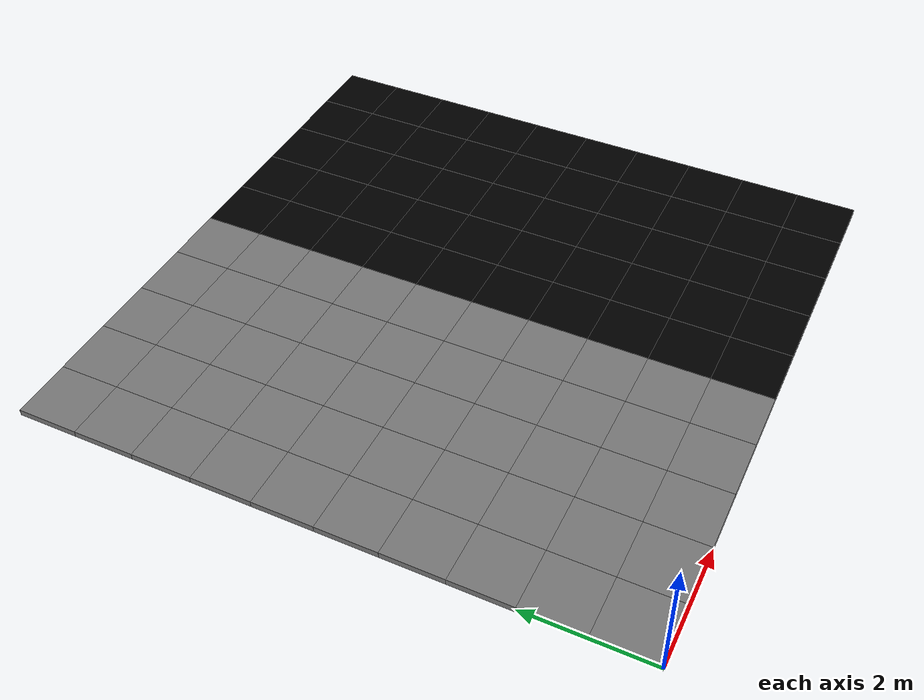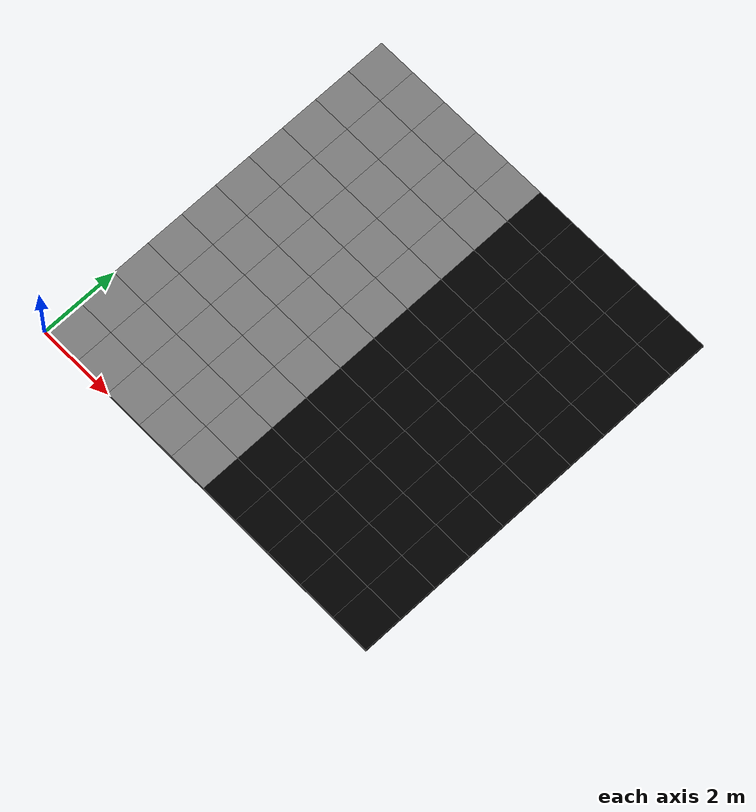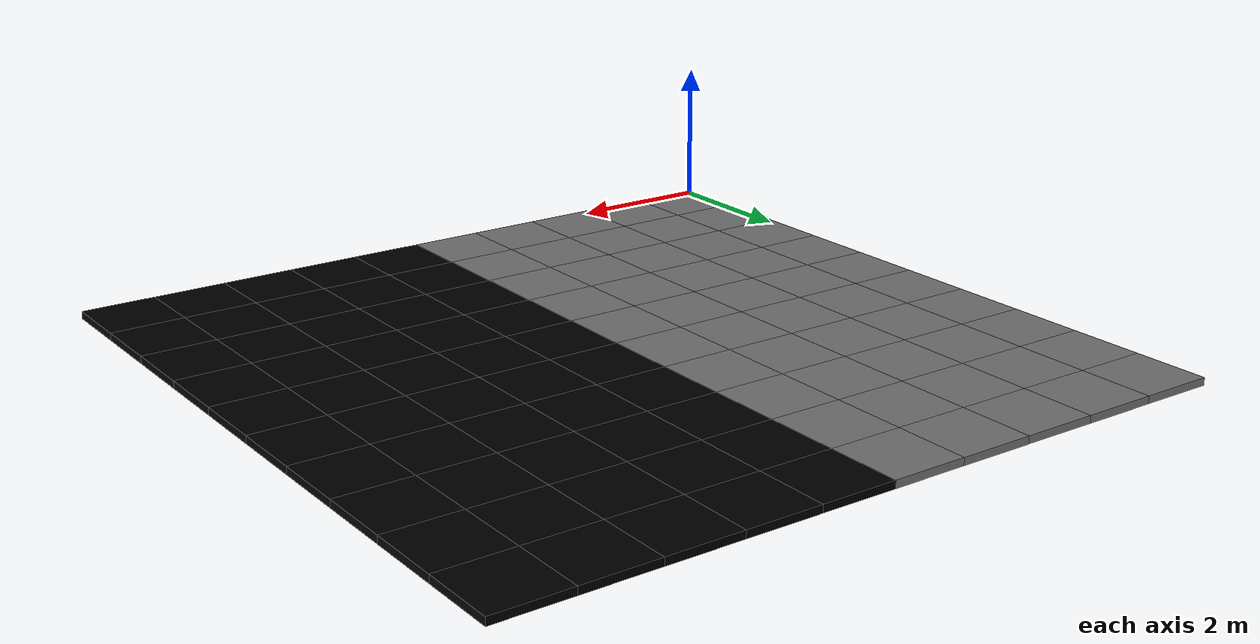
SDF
<sdf version="1.8">
 <world name="binary_discrimination_world">
  <model name="tile_0.5_0.5">
   <static>true</static>
   <pose>0.5 0.5 0 0 0 0</pose>
   <link name="link">
    <collision name="collision"><geometry><box><size>1 1 0.1</size></box></geometry></collision>
    <visual name="visual">
     <geometry><box><size>1 1 0.1</size></box></geometry>
     <material><ambient>0.5 0.5 0.5 1</ambient><diffuse>0.5 0.5 0.5 1</diffuse></material>
    </visual>
   </link>
  </model>
  <model name="tile_0.5_1.5">
   <static>true</static>
   <pose>0.5 1.5 0 0 0 0</pose>
   <link name="link">
    <collision name="collision"><geometry><box><size>1 1 0.1</size></box></geometry></collision>
    <visual name="visual">
     <geometry><box><size>1 1 0.1</size></box></geometry>
     <material><ambient>0.5 0.5 0.5 1</ambient><diffuse>0.5 0.5 0.5 1</diffuse></material>
    </visual>
   </link>
  </model>
  <model name="tile_0.5_2.5">
   <static>true</static>
   <pose>0.5 2.5 0 0 0 0</pose>
   <link name="link">
    <collision name="collision"><geometry><box><size>1 1 0.1</size></box></geometry></collision>
    <visual name="visual">
     <geometry><box><size>1 1 0.1</size></box></geometry>
     <material><ambient>0.5 0.5 0.5 1</ambient><diffuse>0.5 0.5 0.5 1</diffuse></material>
    </visual>
   </link>
  </model>
  <model name="tile_0.5_3.5">
   <static>true</static>
   <pose>0.5 3.5 0 0 0 0</pose>
   <link name="link">
    <collision name="collision"><geometry><box><size>1 1 0.1</size></box></geometry></collision>
    <visual name="visual">
     <geometry><box><size>1 1 0.1</size></box></geometry>
     <material><ambient>0.5 0.5 0.5 1</ambient><diffuse>0.5 0.5 0.5 1</diffuse></material>
    </visual>
   </link>
  </model>
  <model name="tile_0.5_4.5">
   <static>true</static>
   <pose>0.5 4.5 0 0 0 0</pose>
   <link name="link">
    <collision name="collision"><geometry><box><size>1 1 0.1</size></box></geometry></collision>
    <visual name="visual">
     <geometry><box><size>1 1 0.1</size></box></geometry>
     <material><ambient>0.5 0.5 0.5 1</ambient><diffuse>0.5 0.5 0.5 1</diffuse></material>
    </visual>
   </link>
  </model>
  <model name="tile_0.5_5.5">
   <static>true</static>
   <pose>0.5 5.5 0 0 0 0</pose>
   <link name="link">
    <collision name="collision"><geometry><box><size>1 1 0.1</size></box></geometry></collision>
    <visual name="visual">
     <geometry><box><size>1 1 0.1</size></box></geometry>
     <material><ambient>0.5 0.5 0.5 1</ambient><diffuse>0.5 0.5 0.5 1</diffuse></material>
    </visual>
   </link>
  </model>
  <model name="tile_0.5_6.5">
   <static>true</static>
   <pose>0.5 6.5 0 0 0 0</pose>
   <link name="link">
    <collision name="collision"><geometry><box><size>1 1 0.1</size></box></geometry></collision>
    <visual name="visual">
     <geometry><box><size>1 1 0.1</size></box></geometry>
     <material><ambient>0.5 0.5 0.5 1</ambient><diffuse>0.5 0.5 0.5 1</diffuse></material>
    </visual>
   </link>
  </model>
  <model name="tile_0.5_7.5">
   <static>true</static>
   <pose>0.5 7.5 0 0 0 0</pose>
   <link name="link">
    <collision name="collision"><geometry><box><size>1 1 0.1</size></box></geometry></collision>
    <visual name="visual">
     <geometry><box><size>1 1 0.1</size></box></geometry>
     <material><ambient>0.5 0.5 0.5 1</ambient><diffuse>0.5 0.5 0.5 1</diffuse></material>
    </visual>
   </link>
  </model>
  <model name="tile_0.5_8.5">
   <static>true</static>
   <pose>0.5 8.5 0 0 0 0</pose>
   <link name="link">
    <collision name="collision"><geometry><box><size>1 1 0.1</size></box></geometry></collision>
    <visual name="visual">
     <geometry><box><size>1 1 0.1</size></box></geometry>
     <material><ambient>0.5 0.5 0.5 1</ambient><diffuse>0.5 0.5 0.5 1</diffuse></material>
    </visual>
   </link>
  </model>
  <model name="tile_0.5_9.5">
   <static>true</static>
   <pose>0.5 9.5 0 0 0 0</pose>
   <link name="link">
    <collision name="collision"><geometry><box><size>1 1 0.1</size></box></geometry></collision>
    <visual name="visual">
     <geometry><box><size>1 1 0.1</size></box></geometry>
     <material><ambient>0.5 0.5 0.5 1</ambient><diffuse>0.5 0.5 0.5 1</diffuse></material>
    </visual>
   </link>
  </model>
  <model name="tile_1.5_0.5">
   <static>true</static>
   <pose>1.5 0.5 0 0 0 0</pose>
   <link name="link">
    <collision name="collision"><geometry><box><size>1 1 0.1</size></box></geometry></collision>
    <visual name="visual">
     <geometry><box><size>1 1 0.1</size></box></geometry>
     <material><ambient>0.5 0.5 0.5 1</ambient><diffuse>0.5 0.5 0.5 1</diffuse></material>
    </visual>
   </link>
  </model>
  <model name="tile_1.5_1.5">
   <static>true</static>
   <pose>1.5 1.5 0 0 0 0</pose>
   <link name="link">
    <collision name="collision"><geometry><box><size>1 1 0.1</size></box></geometry></collision>
    <visual name="visual">
     <geometry><box><size>1 1 0.1</size></box></geometry>
     <material><ambient>0.5 0.5 0.5 1</ambient><diffuse>0.5 0.5 0.5 1</diffuse></material>
    </visual>
   </link>
  </model>
  <model name="tile_1.5_2.5">
   <static>true</static>
   <pose>1.5 2.5 0 0 0 0</pose>
   <link name="link">
    <collision name="collision"><geometry><box><size>1 1 0.1</size></box></geometry></collision>
    <visual name="visual">
     <geometry><box><size>1 1 0.1</size></box></geometry>
     <material><ambient>0.5 0.5 0.5 1</ambient><diffuse>0.5 0.5 0.5 1</diffuse></material>
    </visual>
   </link>
  </model>
  <model name="tile_1.5_3.5">
   <static>true</static>
   <pose>1.5 3.5 0 0 0 0</pose>
   <link name="link">
    <collision name="collision"><geometry><box><size>1 1 0.1</size></box></geometry></collision>
    <visual name="visual">
     <geometry><box><size>1 1 0.1</size></box></geometry>
     <material><ambient>0.5 0.5 0.5 1</ambient><diffuse>0.5 0.5 0.5 1</diffuse></material>
    </visual>
   </link>
  </model>
  <model name="tile_1.5_4.5">
   <static>true</static>
   <pose>1.5 4.5 0 0 0 0</pose>
   <link name="link">
    <collision name="collision"><geometry><box><size>1 1 0.1</size></box></geometry></collision>
    <visual name="visual">
     <geometry><box><size>1 1 0.1</size></box></geometry>
     <material><ambient>0.5 0.5 0.5 1</ambient><diffuse>0.5 0.5 0.5 1</diffuse></material>
    </visual>
   </link>
  </model>
  <model name="tile_1.5_5.5">
   <static>true</static>
   <pose>1.5 5.5 0 0 0 0</pose>
   <link name="link">
    <collision name="collision"><geometry><box><size>1 1 0.1</size></box></geometry></collision>
    <visual name="visual">
     <geometry><box><size>1 1 0.1</size></box></geometry>
     <material><ambient>0.5 0.5 0.5 1</ambient><diffuse>0.5 0.5 0.5 1</diffuse></material>
    </visual>
   </link>
  </model>
  <model name="tile_1.5_6.5">
   <static>true</static>
   <pose>1.5 6.5 0 0 0 0</pose>
   <link name="link">
    <collision name="collision"><geometry><box><size>1 1 0.1</size></box></geometry></collision>
    <visual name="visual">
     <geometry><box><size>1 1 0.1</size></box></geometry>
     <material><ambient>0.5 0.5 0.5 1</ambient><diffuse>0.5 0.5 0.5 1</diffuse></material>
    </visual>
   </link>
  </model>
  <model name="tile_1.5_7.5">
   <static>true</static>
   <pose>1.5 7.5 0 0 0 0</pose>
   <link name="link">
    <collision name="collision"><geometry><box><size>1 1 0.1</size></box></geometry></collision>
    <visual name="visual">
     <geometry><box><size>1 1 0.1</size></box></geometry>
     <material><ambient>0.5 0.5 0.5 1</ambient><diffuse>0.5 0.5 0.5 1</diffuse></material>
    </visual>
   </link>
  </model>
  <model name="tile_1.5_8.5">
   <static>true</static>
   <pose>1.5 8.5 0 0 0 0</pose>
   <link name="link">
    <collision name="collision"><geometry><box><size>1 1 0.1</size></box></geometry></collision>
    <visual name="visual">
     <geometry><box><size>1 1 0.1</size></box></geometry>
     <material><ambient>0.5 0.5 0.5 1</ambient><diffuse>0.5 0.5 0.5 1</diffuse></material>
    </visual>
   </link>
  </model>
  <model name="tile_1.5_9.5">
   <static>true</static>
   <pose>1.5 9.5 0 0 0 0</pose>
   <link name="link">
    <collision name="collision"><geometry><box><size>1 1 0.1</size></box></geometry></collision>
    <visual name="visual">
     <geometry><box><size>1 1 0.1</size></box></geometry>
     <material><ambient>0.5 0.5 0.5 1</ambient><diffuse>0.5 0.5 0.5 1</diffuse></material>
    </visual>
   </link>
  </model>
  <model name="tile_2.5_0.5">
   <static>true</static>
   <pose>2.5 0.5 0 0 0 0</pose>
   <link name="link">
    <collision name="collision"><geometry><box><size>1 1 0.1</size></box></geometry></collision>
    <visual name="visual">
     <geometry><box><size>1 1 0.1</size></box></geometry>
     <material><ambient>0.5 0.5 0.5 1</ambient><diffuse>0.5 0.5 0.5 1</diffuse></material>
    </visual>
   </link>
  </model>
  <model name="tile_2.5_1.5">
   <static>true</static>
   <pose>2.5 1.5 0 0 0 0</pose>
   <link name="link">
    <collision name="collision"><geometry><box><size>1 1 0.1</size></box></geometry></collision>
    <visual name="visual">
     <geometry><box><size>1 1 0.1</size></box></geometry>
     <material><ambient>0.5 0.5 0.5 1</ambient><diffuse>0.5 0.5 0.5 1</diffuse></material>
    </visual>
   </link>
  </model>
  <model name="tile_2.5_2.5">
   <static>true</static>
   <pose>2.5 2.5 0 0 0 0</pose>
   <link name="link">
    <collision name="collision"><geometry><box><size>1 1 0.1</size></box></geometry></collision>
    <visual name="visual">
     <geometry><box><size>1 1 0.1</size></box></geometry>
     <material><ambient>0.5 0.5 0.5 1</ambient><diffuse>0.5 0.5 0.5 1</diffuse></material>
    </visual>
   </link>
  </model>
  <model name="tile_2.5_3.5">
   <static>true</static>
   <pose>2.5 3.5 0 0 0 0</pose>
   <link name="link">
    <collision name="collision"><geometry><box><size>1 1 0.1</size></box></geometry></collision>
    <visual name="visual">
     <geometry><box><size>1 1 0.1</size></box></geometry>
     <material><ambient>0.5 0.5 0.5 1</ambient><diffuse>0.5 0.5 0.5 1</diffuse></material>
    </visual>
   </link>
  </model>
  <model name="tile_2.5_4.5">
   <static>true</static>
   <pose>2.5 4.5 0 0 0 0</pose>
   <link name="link">
    <collision name="collision"><geometry><box><size>1 1 0.1</size></box></geometry></collision>
    <visual name="visual">
     <geometry><box><size>1 1 0.1</size></box></geometry>
     <material><ambient>0.5 0.5 0.5 1</ambient><diffuse>0.5 0.5 0.5 1</diffuse></material>
    </visual>
   </link>
  </model>
  <model name="tile_2.5_5.5">
   <static>true</static>
   <pose>2.5 5.5 0 0 0 0</pose>
   <link name="link">
    <collision name="collision"><geometry><box><size>1 1 0.1</size></box></geometry></collision>
    <visual name="visual">
     <geometry><box><size>1 1 0.1</size></box></geometry>
     <material><ambient>0.5 0.5 0.5 1</ambient><diffuse>0.5 0.5 0.5 1</diffuse></material>
    </visual>
   </link>
  </model>
  <model name="tile_2.5_6.5">
   <static>true</static>
   <pose>2.5 6.5 0 0 0 0</pose>
   <link name="link">
    <collision name="collision"><geometry><box><size>1 1 0.1</size></box></geometry></collision>
    <visual name="visual">
     <geometry><box><size>1 1 0.1</size></box></geometry>
     <material><ambient>0.5 0.5 0.5 1</ambient><diffuse>0.5 0.5 0.5 1</diffuse></material>
    </visual>
   </link>
  </model>
  <model name="tile_2.5_7.5">
   <static>true</static>
   <pose>2.5 7.5 0 0 0 0</pose>
   <link name="link">
    <collision name="collision"><geometry><box><size>1 1 0.1</size></box></geometry></collision>
    <visual name="visual">
     <geometry><box><size>1 1 0.1</size></box></geometry>
     <material><ambient>0.5 0.5 0.5 1</ambient><diffuse>0.5 0.5 0.5 1</diffuse></material>
    </visual>
   </link>
  </model>
  <model name="tile_2.5_8.5">
   <static>true</static>
   <pose>2.5 8.5 0 0 0 0</pose>
   <link name="link">
    <collision name="collision"><geometry><box><size>1 1 0.1</size></box></geometry></collision>
    <visual name="visual">
     <geometry><box><size>1 1 0.1</size></box></geometry>
     <material><ambient>0.5 0.5 0.5 1</ambient><diffuse>0.5 0.5 0.5 1</diffuse></material>
    </visual>
   </link>
  </model>
  <model name="tile_2.5_9.5">
   <static>true</static>
   <pose>2.5 9.5 0 0 0 0</pose>
   <link name="link">
    <collision name="collision"><geometry><box><size>1 1 0.1</size></box></geometry></collision>
    <visual name="visual">
     <geometry><box><size>1 1 0.1</size></box></geometry>
     <material><ambient>0.5 0.5 0.5 1</ambient><diffuse>0.5 0.5 0.5 1</diffuse></material>
    </visual>
   </link>
  </model>
  <model name="tile_3.5_0.5">
   <static>true</static>
   <pose>3.5 0.5 0 0 0 0</pose>
   <link name="link">
    <collision name="collision"><geometry><box><size>1 1 0.1</size></box></geometry></collision>
    <visual name="visual">
     <geometry><box><size>1 1 0.1</size></box></geometry>
     <material><ambient>0.5 0.5 0.5 1</ambient><diffuse>0.5 0.5 0.5 1</diffuse></material>
    </visual>
   </link>
  </model>
  <model name="tile_3.5_1.5">
   <static>true</static>
   <pose>3.5 1.5 0 0 0 0</pose>
   <link name="link">
    <collision name="collision"><geometry><box><size>1 1 0.1</size></box></geometry></collision>
    <visual name="visual">
     <geometry><box><size>1 1 0.1</size></box></geometry>
     <material><ambient>0.5 0.5 0.5 1</ambient><diffuse>0.5 0.5 0.5 1</diffuse></material>
    </visual>
   </link>
  </model>
  <model name="tile_3.5_2.5">
   <static>true</static>
   <pose>3.5 2.5 0 0 0 0</pose>
   <link name="link">
    <collision name="collision"><geometry><box><size>1 1 0.1</size></box></geometry></collision>
    <visual name="visual">
     <geometry><box><size>1 1 0.1</size></box></geometry>
     <material><ambient>0.5 0.5 0.5 1</ambient><diffuse>0.5 0.5 0.5 1</diffuse></material>
    </visual>
   </link>
  </model>
  <model name="tile_3.5_3.5">
   <static>true</static>
   <pose>3.5 3.5 0 0 0 0</pose>
   <link name="link">
    <collision name="collision"><geometry><box><size>1 1 0.1</size></box></geometry></collision>
    <visual name="visual">
     <geometry><box><size>1 1 0.1</size></box></geometry>
     <material><ambient>0.5 0.5 0.5 1</ambient><diffuse>0.5 0.5 0.5 1</diffuse></material>
    </visual>
   </link>
  </model>
  <model name="tile_3.5_4.5">
   <static>true</static>
   <pose>3.5 4.5 0 0 0 0</pose>
   <link name="link">
    <collision name="collision"><geometry><box><size>1 1 0.1</size></box></geometry></collision>
    <visual name="visual">
     <geometry><box><size>1 1 0.1</size></box></geometry>
     <material><ambient>0.5 0.5 0.5 1</ambient><diffuse>0.5 0.5 0.5 1</diffuse></material>
    </visual>
   </link>
  </model>
  <model name="tile_3.5_5.5">
   <static>true</static>
   <pose>3.5 5.5 0 0 0 0</pose>
   <link name="link">
    <collision name="collision"><geometry><box><size>1 1 0.1</size></box></geometry></collision>
    <visual name="visual">
     <geometry><box><size>1 1 0.1</size></box></geometry>
     <material><ambient>0.5 0.5 0.5 1</ambient><diffuse>0.5 0.5 0.5 1</diffuse></material>
    </visual>
   </link>
  </model>
  <model name="tile_3.5_6.5">
   <static>true</static>
   <pose>3.5 6.5 0 0 0 0</pose>
   <link name="link">
    <collision name="collision"><geometry><box><size>1 1 0.1</size></box></geometry></collision>
    <visual name="visual">
     <geometry><box><size>1 1 0.1</size></box></geometry>
     <material><ambient>0.5 0.5 0.5 1</ambient><diffuse>0.5 0.5 0.5 1</diffuse></material>
    </visual>
   </link>
  </model>
  <model name="tile_3.5_7.5">
   <static>true</static>
   <pose>3.5 7.5 0 0 0 0</pose>
   <link name="link">
    <collision name="collision"><geometry><box><size>1 1 0.1</size></box></geometry></collision>
    <visual name="visual">
     <geometry><box><size>1 1 0.1</size></box></geometry>
     <material><ambient>0.5 0.5 0.5 1</ambient><diffuse>0.5 0.5 0.5 1</diffuse></material>
    </visual>
   </link>
  </model>
  <model name="tile_3.5_8.5">
   <static>true</static>
   <pose>3.5 8.5 0 0 0 0</pose>
   <link name="link">
    <collision name="collision"><geometry><box><size>1 1 0.1</size></box></geometry></collision>
    <visual name="visual">
     <geometry><box><size>1 1 0.1</size></box></geometry>
     <material><ambient>0.5 0.5 0.5 1</ambient><diffuse>0.5 0.5 0.5 1</diffuse></material>
    </visual>
   </link>
  </model>
  <model name="tile_3.5_9.5">
   <static>true</static>
   <pose>3.5 9.5 0 0 0 0</pose>
   <link name="link">
    <collision name="collision"><geometry><box><size>1 1 0.1</size></box></geometry></collision>
    <visual name="visual">
     <geometry><box><size>1 1 0.1</size></box></geometry>
     <material><ambient>0.5 0.5 0.5 1</ambient><diffuse>0.5 0.5 0.5 1</diffuse></material>
    </visual>
   </link>
  </model>
  <model name="tile_4.5_0.5">
   <static>true</static>
   <pose>4.5 0.5 0 0 0 0</pose>
   <link name="link">
    <collision name="collision"><geometry><box><size>1 1 0.1</size></box></geometry></collision>
    <visual name="visual">
     <geometry><box><size>1 1 0.1</size></box></geometry>
     <material><ambient>0.5 0.5 0.5 1</ambient><diffuse>0.5 0.5 0.5 1</diffuse></material>
    </visual>
   </link>
  </model>
  <model name="tile_4.5_1.5">
   <static>true</static>
   <pose>4.5 1.5 0 0 0 0</pose>
   <link name="link">
    <collision name="collision"><geometry><box><size>1 1 0.1</size></box></geometry></collision>
    <visual name="visual">
     <geometry><box><size>1 1 0.1</size></box></geometry>
     <material><ambient>0.5 0.5 0.5 1</ambient><diffuse>0.5 0.5 0.5 1</diffuse></material>
    </visual>
   </link>
  </model>
  <model name="tile_4.5_2.5">
   <static>true</static>
   <pose>4.5 2.5 0 0 0 0</pose>
   <link name="link">
    <collision name="collision"><geometry><box><size>1 1 0.1</size></box></geometry></collision>
    <visual name="visual">
     <geometry><box><size>1 1 0.1</size></box></geometry>
     <material><ambient>0.5 0.5 0.5 1</ambient><diffuse>0.5 0.5 0.5 1</diffuse></material>
    </visual>
   </link>
  </model>
  <model name="tile_4.5_3.5">
   <static>true</static>
   <pose>4.5 3.5 0 0 0 0</pose>
   <link name="link">
    <collision name="collision"><geometry><box><size>1 1 0.1</size></box></geometry></collision>
    <visual name="visual">
     <geometry><box><size>1 1 0.1</size></box></geometry>
     <material><ambient>0.5 0.5 0.5 1</ambient><diffuse>0.5 0.5 0.5 1</diffuse></material>
    </visual>
   </link>
  </model>
  <model name="tile_4.5_4.5">
   <static>true</static>
   <pose>4.5 4.5 0 0 0 0</pose>
   <link name="link">
    <collision name="collision"><geometry><box><size>1 1 0.1</size></box></geometry></collision>
    <visual name="visual">
     <geometry><box><size>1 1 0.1</size></box></geometry>
     <material><ambient>0.5 0.5 0.5 1</ambient><diffuse>0.5 0.5 0.5 1</diffuse></material>
    </visual>
   </link>
  </model>
  <model name="tile_4.5_5.5">
   <static>true</static>
   <pose>4.5 5.5 0 0 0 0</pose>
   <link name="link">
    <collision name="collision"><geometry><box><size>1 1 0.1</size></box></geometry></collision>
    <visual name="visual">
     <geometry><box><size>1 1 0.1</size></box></geometry>
     <material><ambient>0.5 0.5 0.5 1</ambient><diffuse>0.5 0.5 0.5 1</diffuse></material>
    </visual>
   </link>
  </model>
  <model name="tile_4.5_6.5">
   <static>true</static>
   <pose>4.5 6.5 0 0 0 0</pose>
   <link name="link">
    <collision name="collision"><geometry><box><size>1 1 0.1</size></box></geometry></collision>
    <visual name="visual">
     <geometry><box><size>1 1 0.1</size></box></geometry>
     <material><ambient>0.5 0.5 0.5 1</ambient><diffuse>0.5 0.5 0.5 1</diffuse></material>
    </visual>
   </link>
  </model>
  <model name="tile_4.5_7.5">
   <static>true</static>
   <pose>4.5 7.5 0 0 0 0</pose>
   <link name="link">
    <collision name="collision"><geometry><box><size>1 1 0.1</size></box></geometry></collision>
    <visual name="visual">
     <geometry><box><size>1 1 0.1</size></box></geometry>
     <material><ambient>0.5 0.5 0.5 1</ambient><diffuse>0.5 0.5 0.5 1</diffuse></material>
    </visual>
   </link>
  </model>
  <model name="tile_4.5_8.5">
   <static>true</static>
   <pose>4.5 8.5 0 0 0 0</pose>
   <link name="link">
    <collision name="collision"><geometry><box><size>1 1 0.1</size></box></geometry></collision>
    <visual name="visual">
     <geometry><box><size>1 1 0.1</size></box></geometry>
     <material><ambient>0.5 0.5 0.5 1</ambient><diffuse>0.5 0.5 0.5 1</diffuse></material>
    </visual>
   </link>
  </model>
  <model name="tile_4.5_9.5">
   <static>true</static>
   <pose>4.5 9.5 0 0 0 0</pose>
   <link name="link">
    <collision name="collision"><geometry><box><size>1 1 0.1</size></box></geometry></collision>
    <visual name="visual">
     <geometry><box><size>1 1 0.1</size></box></geometry>
     <material><ambient>0.5 0.5 0.5 1</ambient><diffuse>0.5 0.5 0.5 1</diffuse></material>
    </visual>
   </link>
  </model>
  <model name="tile_5.5_0.5">
   <static>true</static>
   <pose>5.5 0.5 0 0 0 0</pose>
   <link name="link">
    <collision name="collision"><geometry><box><size>1 1 0.1</size></box></geometry></collision>
    <visual name="visual">
     <geometry><box><size>1 1 0.1</size></box></geometry>
     <material><ambient>0 0 0 1</ambient><diffuse>0 0 0 1</diffuse></material>
    </visual>
   </link>
  </model>
  <model name="tile_5.5_1.5">
   <static>true</static>
   <pose>5.5 1.5 0 0 0 0</pose>
   <link name="link">
    <collision name="collision"><geometry><box><size>1 1 0.1</size></box></geometry></collision>
    <visual name="visual">
     <geometry><box><size>1 1 0.1</size></box></geometry>
     <material><ambient>0 0 0 1</ambient><diffuse>0 0 0 1</diffuse></material>
    </visual>
   </link>
  </model>
  <model name="tile_5.5_2.5">
   <static>true</static>
   <pose>5.5 2.5 0 0 0 0</pose>
   <link name="link">
    <collision name="collision"><geometry><box><size>1 1 0.1</size></box></geometry></collision>
    <visual name="visual">
     <geometry><box><size>1 1 0.1</size></box></geometry>
     <material><ambient>0 0 0 1</ambient><diffuse>0 0 0 1</diffuse></material>
    </visual>
   </link>
  </model>
  <model name="tile_5.5_3.5">
   <static>true</static>
   <pose>5.5 3.5 0 0 0 0</pose>
   <link name="link">
    <collision name="collision"><geometry><box><size>1 1 0.1</size></box></geometry></collision>
    <visual name="visual">
     <geometry><box><size>1 1 0.1</size></box></geometry>
     <material><ambient>0 0 0 1</ambient><diffuse>0 0 0 1</diffuse></material>
    </visual>
   </link>
  </model>
  <model name="tile_5.5_4.5">
   <static>true</static>
   <pose>5.5 4.5 0 0 0 0</pose>
   <link name="link">
    <collision name="collision"><geometry><box><size>1 1 0.1</size></box></geometry></collision>
    <visual name="visual">
     <geometry><box><size>1 1 0.1</size></box></geometry>
     <material><ambient>0 0 0 1</ambient><diffuse>0 0 0 1</diffuse></material>
    </visual>
   </link>
  </model>
  <model name="tile_5.5_5.5">
   <static>true</static>
   <pose>5.5 5.5 0 0 0 0</pose>
   <link name="link">
    <collision name="collision"><geometry><box><size>1 1 0.1</size></box></geometry></collision>
    <visual name="visual">
     <geometry><box><size>1 1 0.1</size></box></geometry>
     <material><ambient>0 0 0 1</ambient><diffuse>0 0 0 1</diffuse></material>
    </visual>
   </link>
  </model>
  <model name="tile_5.5_6.5">
   <static>true</static>
   <pose>5.5 6.5 0 0 0 0</pose>
   <link name="link">
    <collision name="collision"><geometry><box><size>1 1 0.1</size></box></geometry></collision>
    <visual name="visual">
     <geometry><box><size>1 1 0.1</size></box></geometry>
     <material><ambient>0 0 0 1</ambient><diffuse>0 0 0 1</diffuse></material>
    </visual>
   </link>
  </model>
  <model name="tile_5.5_7.5">
   <static>true</static>
   <pose>5.5 7.5 0 0 0 0</pose>
   <link name="link">
    <collision name="collision"><geometry><box><size>1 1 0.1</size></box></geometry></collision>
    <visual name="visual">
     <geometry><box><size>1 1 0.1</size></box></geometry>
     <material><ambient>0 0 0 1</ambient><diffuse>0 0 0 1</diffuse></material>
    </visual>
   </link>
  </model>
  <model name="tile_5.5_8.5">
   <static>true</static>
   <pose>5.5 8.5 0 0 0 0</pose>
   <link name="link">
    <collision name="collision"><geometry><box><size>1 1 0.1</size></box></geometry></collision>
    <visual name="visual">
     <geometry><box><size>1 1 0.1</size></box></geometry>
     <material><ambient>0 0 0 1</ambient><diffuse>0 0 0 1</diffuse></material>
    </visual>
   </link>
  </model>
  <model name="tile_5.5_9.5">
   <static>true</static>
   <pose>5.5 9.5 0 0 0 0</pose>
   <link name="link">
    <collision name="collision"><geometry><box><size>1 1 0.1</size></box></geometry></collision>
    <visual name="visual">
     <geometry><box><size>1 1 0.1</size></box></geometry>
     <material><ambient>0 0 0 1</ambient><diffuse>0 0 0 1</diffuse></material>
    </visual>
   </link>
  </model>
  <model name="tile_6.5_0.5">
   <static>true</static>
   <pose>6.5 0.5 0 0 0 0</pose>
   <link name="link">
    <collision name="collision"><geometry><box><size>1 1 0.1</size></box></geometry></collision>
    <visual name="visual">
     <geometry><box><size>1 1 0.1</size></box></geometry>
     <material><ambient>0 0 0 1</ambient><diffuse>0 0 0 1</diffuse></material>
    </visual>
   </link>
  </model>
  <model name="tile_6.5_1.5">
   <static>true</static>
   <pose>6.5 1.5 0 0 0 0</pose>
   <link name="link">
    <collision name="collision"><geometry><box><size>1 1 0.1</size></box></geometry></collision>
    <visual name="visual">
     <geometry><box><size>1 1 0.1</size></box></geometry>
     <material><ambient>0 0 0 1</ambient><diffuse>0 0 0 1</diffuse></material>
    </visual>
   </link>
  </model>
  <model name="tile_6.5_2.5">
   <static>true</static>
   <pose>6.5 2.5 0 0 0 0</pose>
   <link name="link">
    <collision name="collision"><geometry><box><size>1 1 0.1</size></box></geometry></collision>
    <visual name="visual">
     <geometry><box><size>1 1 0.1</size></box></geometry>
     <material><ambient>0 0 0 1</ambient><diffuse>0 0 0 1</diffuse></material>
    </visual>
   </link>
  </model>
  <model name="tile_6.5_3.5">
   <static>true</static>
   <pose>6.5 3.5 0 0 0 0</pose>
   <link name="link">
    <collision name="collision"><geometry><box><size>1 1 0.1</size></box></geometry></collision>
    <visual name="visual">
     <geometry><box><size>1 1 0.1</size></box></geometry>
     <material><ambient>0 0 0 1</ambient><diffuse>0 0 0 1</diffuse></material>
    </visual>
   </link>
  </model>
  <model name="tile_6.5_4.5">
   <static>true</static>
   <pose>6.5 4.5 0 0 0 0</pose>
   <link name="link">
    <collision name="collision"><geometry><box><size>1 1 0.1</size></box></geometry></collision>
    <visual name="visual">
     <geometry><box><size>1 1 0.1</size></box></geometry>
     <material><ambient>0 0 0 1</ambient><diffuse>0 0 0 1</diffuse></material>
    </visual>
   </link>
  </model>
  <model name="tile_6.5_5.5">
   <static>true</static>
   <pose>6.5 5.5 0 0 0 0</pose>
   <link name="link">
    <collision name="collision"><geometry><box><size>1 1 0.1</size></box></geometry></collision>
    <visual name="visual">
     <geometry><box><size>1 1 0.1</size></box></geometry>
     <material><ambient>0 0 0 1</ambient><diffuse>0 0 0 1</diffuse></material>
    </visual>
   </link>
  </model>
  <model name="tile_6.5_6.5">
   <static>true</static>
   <pose>6.5 6.5 0 0 0 0</pose>
   <link name="link">
    <collision name="collision"><geometry><box><size>1 1 0.1</size></box></geometry></collision>
    <visual name="visual">
     <geometry><box><size>1 1 0.1</size></box></geometry>
     <material><ambient>0 0 0 1</ambient><diffuse>0 0 0 1</diffuse></material>
    </visual>
   </link>
  </model>
  <model name="tile_6.5_7.5">
   <static>true</static>
   <pose>6.5 7.5 0 0 0 0</pose>
   <link name="link">
    <collision name="collision"><geometry><box><size>1 1 0.1</size></box></geometry></collision>
    <visual name="visual">
     <geometry><box><size>1 1 0.1</size></box></geometry>
     <material><ambient>0 0 0 1</ambient><diffuse>0 0 0 1</diffuse></material>
    </visual>
   </link>
  </model>
  <model name="tile_6.5_8.5">
   <static>true</static>
   <pose>6.5 8.5 0 0 0 0</pose>
   <link name="link">
    <collision name="collision"><geometry><box><size>1 1 0.1</size></box></geometry></collision>
    <visual name="visual">
     <geometry><box><size>1 1 0.1</size></box></geometry>
     <material><ambient>0 0 0 1</ambient><diffuse>0 0 0 1</diffuse></material>
    </visual>
   </link>
  </model>
  <model name="tile_6.5_9.5">
   <static>true</static>
   <pose>6.5 9.5 0 0 0 0</pose>
   <link name="link">
    <collision name="collision"><geometry><box><size>1 1 0.1</size></box></geometry></collision>
    <visual name="visual">
     <geometry><box><size>1 1 0.1</size></box></geometry>
     <material><ambient>0 0 0 1</ambient><diffuse>0 0 0 1</diffuse></material>
    </visual>
   </link>
  </model>
  <model name="tile_7.5_0.5">
   <static>true</static>
   <pose>7.5 0.5 0 0 0 0</pose>
   <link name="link">
    <collision name="collision"><geometry><box><size>1 1 0.1</size></box></geometry></collision>
    <visual name="visual">
     <geometry><box><size>1 1 0.1</size></box></geometry>
     <material><ambient>0 0 0 1</ambient><diffuse>0 0 0 1</diffuse></material>
    </visual>
   </link>
  </model>
  <model name="tile_7.5_1.5">
   <static>true</static>
   <pose>7.5 1.5 0 0 0 0</pose>
   <link name="link">
    <collision name="collision"><geometry><box><size>1 1 0.1</size></box></geometry></collision>
    <visual name="visual">
     <geometry><box><size>1 1 0.1</size></box></geometry>
     <material><ambient>0 0 0 1</ambient><diffuse>0 0 0 1</diffuse></material>
    </visual>
   </link>
  </model>
  <model name="tile_7.5_2.5">
   <static>true</static>
   <pose>7.5 2.5 0 0 0 0</pose>
   <link name="link">
    <collision name="collision"><geometry><box><size>1 1 0.1</size></box></geometry></collision>
    <visual name="visual">
     <geometry><box><size>1 1 0.1</size></box></geometry>
     <material><ambient>0 0 0 1</ambient><diffuse>0 0 0 1</diffuse></material>
    </visual>
   </link>
  </model>
  <model name="tile_7.5_3.5">
   <static>true</static>
   <pose>7.5 3.5 0 0 0 0</pose>
   <link name="link">
    <collision name="collision"><geometry><box><size>1 1 0.1</size></box></geometry></collision>
    <visual name="visual">
     <geometry><box><size>1 1 0.1</size></box></geometry>
     <material><ambient>0 0 0 1</ambient><diffuse>0 0 0 1</diffuse></material>
    </visual>
   </link>
  </model>
  <model name="tile_7.5_4.5">
   <static>true</static>
   <pose>7.5 4.5 0 0 0 0</pose>
   <link name="link">
    <collision name="collision"><geometry><box><size>1 1 0.1</size></box></geometry></collision>
    <visual name="visual">
     <geometry><box><size>1 1 0.1</size></box></geometry>
     <material><ambient>0 0 0 1</ambient><diffuse>0 0 0 1</diffuse></material>
    </visual>
   </link>
  </model>
  <model name="tile_7.5_5.5">
   <static>true</static>
   <pose>7.5 5.5 0 0 0 0</pose>
   <link name="link">
    <collision name="collision"><geometry><box><size>1 1 0.1</size></box></geometry></collision>
    <visual name="visual">
     <geometry><box><size>1 1 0.1</size></box></geometry>
     <material><ambient>0 0 0 1</ambient><diffuse>0 0 0 1</diffuse></material>
    </visual>
   </link>
  </model>
  <model name="tile_7.5_6.5">
   <static>true</static>
   <pose>7.5 6.5 0 0 0 0</pose>
   <link name="link">
    <collision name="collision"><geometry><box><size>1 1 0.1</size></box></geometry></collision>
    <visual name="visual">
     <geometry><box><size>1 1 0.1</size></box></geometry>
     <material><ambient>0 0 0 1</ambient><diffuse>0 0 0 1</diffuse></material>
    </visual>
   </link>
  </model>
  <model name="tile_7.5_7.5">
   <static>true</static>
   <pose>7.5 7.5 0 0 0 0</pose>
   <link name="link">
    <collision name="collision"><geometry><box><size>1 1 0.1</size></box></geometry></collision>
    <visual name="visual">
     <geometry><box><size>1 1 0.1</size></box></geometry>
     <material><ambient>0 0 0 1</ambient><diffuse>0 0 0 1</diffuse></material>
    </visual>
   </link>
  </model>
  <model name="tile_7.5_8.5">
   <static>true</static>
   <pose>7.5 8.5 0 0 0 0</pose>
   <link name="link">
    <collision name="collision"><geometry><box><size>1 1 0.1</size></box></geometry></collision>
    <visual name="visual">
     <geometry><box><size>1 1 0.1</size></box></geometry>
     <material><ambient>0 0 0 1</ambient><diffuse>0 0 0 1</diffuse></material>
    </visual>
   </link>
  </model>
  <model name="tile_7.5_9.5">
   <static>true</static>
   <pose>7.5 9.5 0 0 0 0</pose>
   <link name="link">
    <collision name="collision"><geometry><box><size>1 1 0.1</size></box></geometry></collision>
    <visual name="visual">
     <geometry><box><size>1 1 0.1</size></box></geometry>
     <material><ambient>0 0 0 1</ambient><diffuse>0 0 0 1</diffuse></material>
    </visual>
   </link>
  </model>
  <model name="tile_8.5_0.5">
   <static>true</static>
   <pose>8.5 0.5 0 0 0 0</pose>
   <link name="link">
    <collision name="collision"><geometry><box><size>1 1 0.1</size></box></geometry></collision>
    <visual name="visual">
     <geometry><box><size>1 1 0.1</size></box></geometry>
     <material><ambient>0 0 0 1</ambient><diffuse>0 0 0 1</diffuse></material>
    </visual>
   </link>
  </model>
  <model name="tile_8.5_1.5">
   <static>true</static>
   <pose>8.5 1.5 0 0 0 0</pose>
   <link name="link">
    <collision name="collision"><geometry><box><size>1 1 0.1</size></box></geometry></collision>
    <visual name="visual">
     <geometry><box><size>1 1 0.1</size></box></geometry>
     <material><ambient>0 0 0 1</ambient><diffuse>0 0 0 1</diffuse></material>
    </visual>
   </link>
  </model>
  <model name="tile_8.5_2.5">
   <static>true</static>
   <pose>8.5 2.5 0 0 0 0</pose>
   <link name="link">
    <collision name="collision"><geometry><box><size>1 1 0.1</size></box></geometry></collision>
    <visual name="visual">
     <geometry><box><size>1 1 0.1</size></box></geometry>
     <material><ambient>0 0 0 1</ambient><diffuse>0 0 0 1</diffuse></material>
    </visual>
   </link>
  </model>
  <model name="tile_8.5_3.5">
   <static>true</static>
   <pose>8.5 3.5 0 0 0 0</pose>
   <link name="link">
    <collision name="collision"><geometry><box><size>1 1 0.1</size></box></geometry></collision>
    <visual name="visual">
     <geometry><box><size>1 1 0.1</size></box></geometry>
     <material><ambient>0 0 0 1</ambient><diffuse>0 0 0 1</diffuse></material>
    </visual>
   </link>
  </model>
  <model name="tile_8.5_4.5">
   <static>true</static>
   <pose>8.5 4.5 0 0 0 0</pose>
   <link name="link">
    <collision name="collision"><geometry><box><size>1 1 0.1</size></box></geometry></collision>
    <visual name="visual">
     <geometry><box><size>1 1 0.1</size></box></geometry>
     <material><ambient>0 0 0 1</ambient><diffuse>0 0 0 1</diffuse></material>
    </visual>
   </link>
  </model>
  <model name="tile_8.5_5.5">
   <static>true</static>
   <pose>8.5 5.5 0 0 0 0</pose>
   <link name="link">
    <collision name="collision"><geometry><box><size>1 1 0.1</size></box></geometry></collision>
    <visual name="visual">
     <geometry><box><size>1 1 0.1</size></box></geometry>
     <material><ambient>0 0 0 1</ambient><diffuse>0 0 0 1</diffuse></material>
    </visual>
   </link>
  </model>
  <model name="tile_8.5_6.5">
   <static>true</static>
   <pose>8.5 6.5 0 0 0 0</pose>
   <link name="link">
    <collision name="collision"><geometry><box><size>1 1 0.1</size></box></geometry></collision>
    <visual name="visual">
     <geometry><box><size>1 1 0.1</size></box></geometry>
     <material><ambient>0 0 0 1</ambient><diffuse>0 0 0 1</diffuse></material>
    </visual>
   </link>
  </model>
  <model name="tile_8.5_7.5">
   <static>true</static>
   <pose>8.5 7.5 0 0 0 0</pose>
   <link name="link">
    <collision name="collision"><geometry><box><size>1 1 0.1</size></box></geometry></collision>
    <visual name="visual">
     <geometry><box><size>1 1 0.1</size></box></geometry>
     <material><ambient>0 0 0 1</ambient><diffuse>0 0 0 1</diffuse></material>
    </visual>
   </link>
  </model>
  <model name="tile_8.5_8.5">
   <static>true</static>
   <pose>8.5 8.5 0 0 0 0</pose>
   <link name="link">
    <collision name="collision"><geometry><box><size>1 1 0.1</size></box></geometry></collision>
    <visual name="visual">
     <geometry><box><size>1 1 0.1</size></box></geometry>
     <material><ambient>0 0 0 1</ambient><diffuse>0 0 0 1</diffuse></material>
    </visual>
   </link>
  </model>
  <model name="tile_8.5_9.5">
   <static>true</static>
   <pose>8.5 9.5 0 0 0 0</pose>
   <link name="link">
    <collision name="collision"><geometry><box><size>1 1 0.1</size></box></geometry></collision>
    <visual name="visual">
     <geometry><box><size>1 1 0.1</size></box></geometry>
     <material><ambient>0 0 0 1</ambient><diffuse>0 0 0 1</diffuse></material>
    </visual>
   </link>
  </model>
  <model name="tile_9.5_0.5">
   <static>true</static>
   <pose>9.5 0.5 0 0 0 0</pose>
   <link name="link">
    <collision name="collision"><geometry><box><size>1 1 0.1</size></box></geometry></collision>
    <visual name="visual">
     <geometry><box><size>1 1 0.1</size></box></geometry>
     <material><ambient>0 0 0 1</ambient><diffuse>0 0 0 1</diffuse></material>
    </visual>
   </link>
  </model>
  <model name="tile_9.5_1.5">
   <static>true</static>
   <pose>9.5 1.5 0 0 0 0</pose>
   <link name="link">
    <collision name="collision"><geometry><box><size>1 1 0.1</size></box></geometry></collision>
    <visual name="visual">
     <geometry><box><size>1 1 0.1</size></box></geometry>
     <material><ambient>0 0 0 1</ambient><diffuse>0 0 0 1</diffuse></material>
    </visual>
   </link>
  </model>
  <model name="tile_9.5_2.5">
   <static>true</static>
   <pose>9.5 2.5 0 0 0 0</pose>
   <link name="link">
    <collision name="collision"><geometry><box><size>1 1 0.1</size></box></geometry></collision>
    <visual name="visual">
     <geometry><box><size>1 1 0.1</size></box></geometry>
     <material><ambient>0 0 0 1</ambient><diffuse>0 0 0 1</diffuse></material>
    </visual>
   </link>
  </model>
  <model name="tile_9.5_3.5">
   <static>true</static>
   <pose>9.5 3.5 0 0 0 0</pose>
   <link name="link">
    <collision name="collision"><geometry><box><size>1 1 0.1</size></box></geometry></collision>
    <visual name="visual">
     <geometry><box><size>1 1 0.1</size></box></geometry>
     <material><ambient>0 0 0 1</ambient><diffuse>0 0 0 1</diffuse></material>
    </visual>
   </link>
  </model>
  <model name="tile_9.5_4.5">
   <static>true</static>
   <pose>9.5 4.5 0 0 0 0</pose>
   <link name="link">
    <collision name="collision"><geometry><box><size>1 1 0.1</size></box></geometry></collision>
    <visual name="visual">
     <geometry><box><size>1 1 0.1</size></box></geometry>
     <material><ambient>0 0 0 1</ambient><diffuse>0 0 0 1</diffuse></material>
    </visual>
   </link>
  </model>
  <model name="tile_9.5_5.5">
   <static>true</static>
   <pose>9.5 5.5 0 0 0 0</pose>
   <link name="link">
    <collision name="collision"><geometry><box><size>1 1 0.1</size></box></geometry></collision>
    <visual name="visual">
     <geometry><box><size>1 1 0.1</size></box></geometry>
     <material><ambient>0 0 0 1</ambient><diffuse>0 0 0 1</diffuse></material>
    </visual>
   </link>
  </model>
  <model name="tile_9.5_6.5">
   <static>true</static>
   <pose>9.5 6.5 0 0 0 0</pose>
   <link name="link">
    <collision name="collision"><geometry><box><size>1 1 0.1</size></box></geometry></collision>
    <visual name="visual">
     <geometry><box><size>1 1 0.1</size></box></geometry>
     <material><ambient>0 0 0 1</ambient><diffuse>0 0 0 1</diffuse></material>
    </visual>
   </link>
  </model>
  <model name="tile_9.5_7.5">
   <static>true</static>
   <pose>9.5 7.5 0 0 0 0</pose>
   <link name="link">
    <collision name="collision"><geometry><box><size>1 1 0.1</size></box></geometry></collision>
    <visual name="visual">
     <geometry><box><size>1 1 0.1</size></box></geometry>
     <material><ambient>0 0 0 1</ambient><diffuse>0 0 0 1</diffuse></material>
    </visual>
   </link>
  </model>
  <model name="tile_9.5_8.5">
   <static>true</static>
   <pose>9.5 8.5 0 0 0 0</pose>
   <link name="link">
    <collision name="collision"><geometry><box><size>1 1 0.1</size></box></geometry></collision>
    <visual name="visual">
     <geometry><box><size>1 1 0.1</size></box></geometry>
     <material><ambient>0 0 0 1</ambient><diffuse>0 0 0 1</diffuse></material>
    </visual>
   </link>
  </model>
  <model name="tile_9.5_9.5">
   <static>true</static>
   <pose>9.5 9.5 0 0 0 0</pose>
   <link name="link">
    <collision name="collision"><geometry><box><size>1 1 0.1</size></box></geometry></collision>
    <visual name="visual">
     <geometry><box><size>1 1 0.1</size></box></geometry>
     <material><ambient>0 0 0 1</ambient><diffuse>0 0 0 1</diffuse></material>
    </visual>
   </link>
  </model>
 </world>
</sdf>
